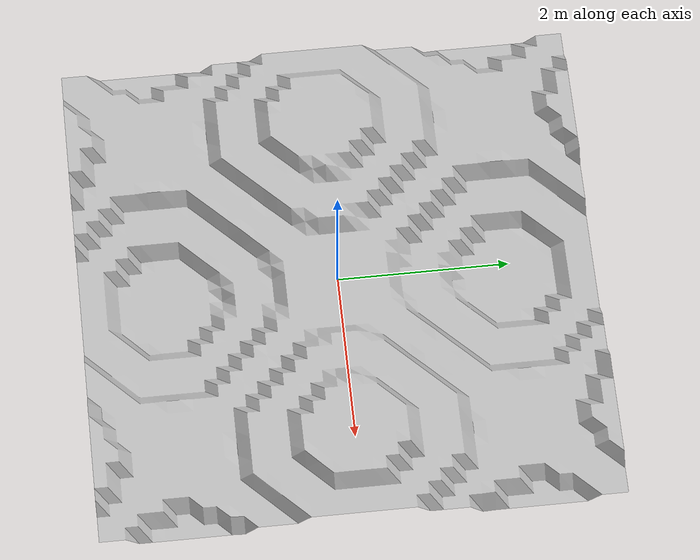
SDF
<?xml version="1.0"?>
<!--  |    This document was autogenerated by scene_to_spawner from terrain.dae                |  -->
<!--  |    EDITING THIS FILE BY HAND IS NOT RECOMMENDED                                        |  -->
<sdf version="1.4">
  <model name="terrain">
    <static>1</static>
    <link name="link">
      <visual name="visual">
        <geometry>
          <mesh>
            <uri>ground.stl</uri>
          </mesh>
        </geometry>
      </visual>
      <collision name="collision">
        <geometry>
          <mesh>
            <uri>ground.stl</uri>
          </mesh>
        </geometry>
        <surface>
          <friction>
            <ode>
              <mu>100</mu>
              <mu2>50</mu2>
            </ode>
          </friction>
        </surface>
      </collision>
    </link>
  </model>
</sdf>
